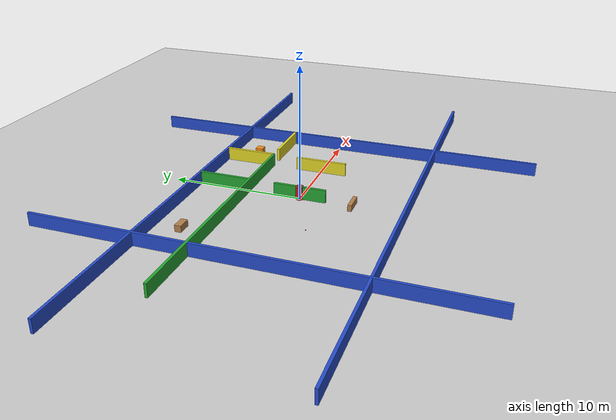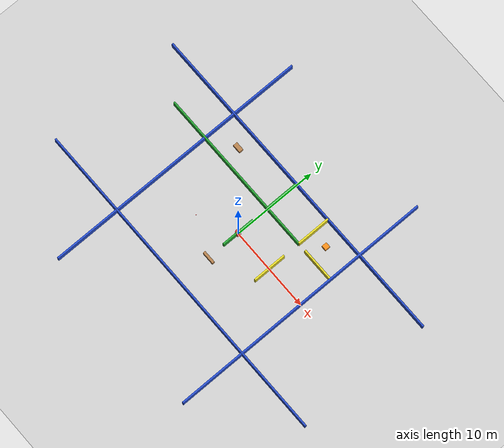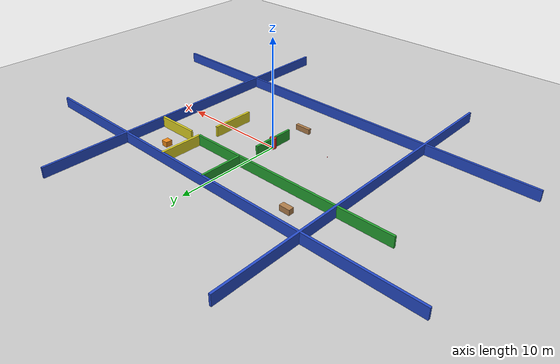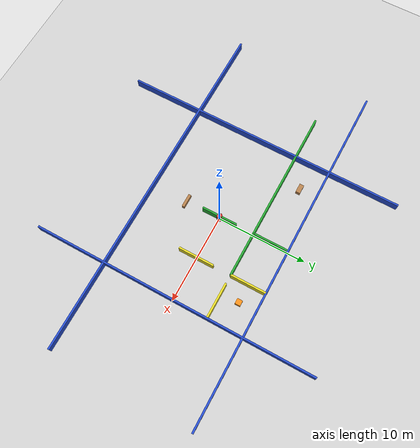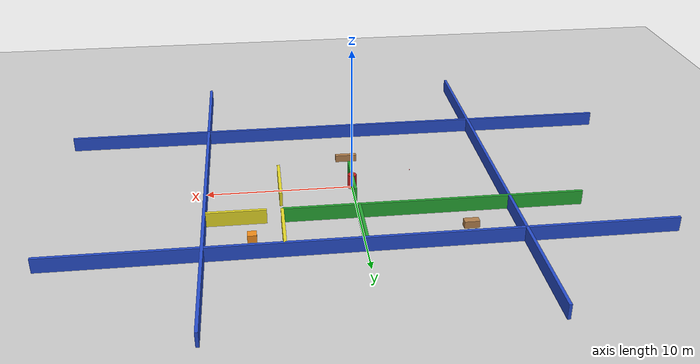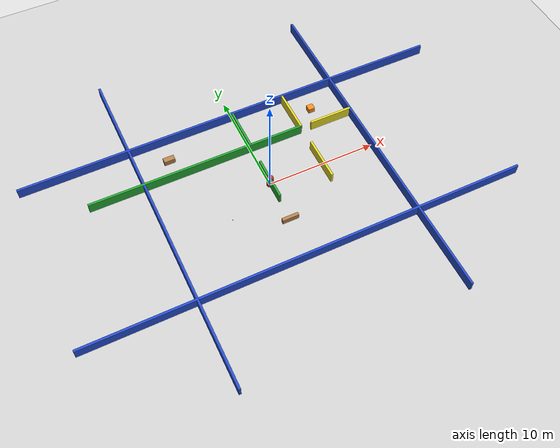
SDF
<?xml version='1.0'?>
<sdf version='1.7'>
  <world name='indoor_map'>
      <physics name="1ms" type="ignored">
      <max_step_size>0.001</max_step_size>
      <real_time_factor>1.0</real_time_factor>
    </physics>
     <plugin
      filename="gz-sim-physics-system"
      name="gz::sim::systems::Physics">
    </plugin>
    <plugin
      filename="gz-sim-user-commands-system"
      name="gz::sim::systems::UserCommands">
    </plugin>
    <plugin
      filename="gz-sim-scene-broadcaster-system"
      name="gz::sim::systems::SceneBroadcaster">
    </plugin>
    <plugin filename="gz-sim-imu-system"
      name="gz::sim::systems::Imu">
    </plugin>
    <plugin
      filename="gz-sim-sensors-system"
      name="gz::sim::systems::Sensors">
      <render_engine>ogre2</render_engine>
    </plugin>
    <!-- 环境光照 -->
    <light name='sun' type='directional'>
      <cast_shadows>1</cast_shadows>
      <pose>0 0 10 0 -0 0</pose>
      <diffuse>0.8 0.8 0.8 1</diffuse>
      <specular>0.2 0.2 0.2 1</specular>
      <attenuation>
        <range>1000</range>
        <constant>0.9</constant>
        <linear>0.01</linear>
        <quadratic>0.001</quadratic>
      </attenuation>
      <direction>-0.5 0.1 -0.9</direction>
    </light>

    <!-- 地面 -->
    <model name='ground_plane'>
      <static>1</static>
      <link name='link'>
        <collision name='collision'>
          <geometry>
            <plane>
              <normal>0 0 1</normal>
              <size>40 40</size>
            </plane>
          </geometry>
          <surface>
            <friction>
              <ode>
                <mu>100</mu>
                <mu2>50</mu2>
              </ode>
            </friction>
          </surface>
        </collision>
        <visual name='visual'>
          <geometry>
            <plane>
              <normal>0 0 1</normal>
              <size>40 40</size>
            </plane>
          </geometry>
          <material>
            <script>
              <uri>file://media/materials/scripts/gazebo.material</uri>
              <name>Gazebo/Grey</name>
            </script>
          </material>
        </visual>
      </link>
    </model>

    <!-- ===== 墙壁定义 ===== -->

    <!-- 主走廊外墙壁 -->
    <!-- 北墙 -->
    <model name='wall_north'>
      <static>1</static>
      <pose>0 8 0.5 0 0 0</pose>
      <link name='link'>
        <collision name='collision'>
          <geometry>
            <box>
              <size>40 0.2 1</size>
            </box>
          </geometry>
        </collision>
        <visual name='visual'>
          <geometry>
            <box>
              <size>40 0.2 1</size>
            </box>
          </geometry>
          <material>
            <script>
              <name>Gazebo/Blue</name>
              <uri>file://media/materials/scripts/gazebo.material</uri>
            </script>
          </material>
        </visual>
      </link>
    </model>

    <!-- 南墙 -->
    <model name='wall_south'>
      <static>1</static>
      <pose>0 -8 0.5 0 0 0</pose>
      <link name='link'>
        <collision name='collision'>
          <geometry>
            <box>
              <size>40 0.2 1</size>
            </box>
          </geometry>
        </collision>
        <visual name='visual'>
          <geometry>
            <box>
              <size>40 0.2 1</size>
            </box>
          </geometry>
          <material>
            <script>
              <name>Gazebo/Blue</name>
              <uri>file://media/materials/scripts/gazebo.material</uri>
            </script>
          </material>
        </visual>
      </link>
    </model>

    <!-- 西墙 -->
    <model name='wall_west'>
      <static>1</static>
      <pose>-10 0 0.5 0 0 0</pose>
      <link name='link'>
        <collision name='collision'>
          <geometry>
            <box>
              <size>0.2 32 1</size>
            </box>
          </geometry>
        </collision>
        <visual name='visual'>
          <geometry>
            <box>
              <size>0.2 32 1</size>
            </box>
          </geometry>
          <material>
            <script>
              <name>Gazebo/Blue</name>
              <uri>file://media/materials/scripts/gazebo.material</uri>
            </script>
          </material>
        </visual>
      </link>
    </model>

    <!-- 东墙（中间有开口作为走廊连接） -->
    <model name='wall_east'>
      <static>1</static>
      <pose>10 0 0.5 0 0 0</pose>
      <link name='link'>
        <collision name='collision'>
          <geometry>
            <box>
              <size>0.2 32 1</size>
            </box>
          </geometry>
        </collision>
        <visual name='visual'>
          <geometry>
            <box>
              <size>0.2 32 1</size>
            </box>
          </geometry>
          <material>
            <script>
              <name>Gazebo/Blue</name>
              <uri>file://media/materials/scripts/gazebo.material</uri>
            </script>
          </material>
        </visual>
      </link>
    </model>

    <!-- ===== 房间墙壁 ===== -->

    <!-- 房间1（左上角房间） -->
    <!-- 房间1南墙 -->
    <model name='room1_south_wall'>
      <static>1</static>
      <pose>-5 4 0.5 0 0 0</pose>
      <link name='link'>
        <collision name='collision'>
          <geometry>
            <box>
              <size>20 0.2 1</size>
            </box>
          </geometry>
        </collision>
        <visual name='visual'>
          <geometry>
            <box>
              <size>20 0.2 1</size>
            </box>
          </geometry>
          <material>
            <script>
              <name>Gazebo/Green</name>
              <uri>file://media/materials/scripts/gazebo.material</uri>
            </script>
          </material>
        </visual>
      </link>
    </model>

    <!-- 房间1东墙（有门洞） -->
    <model name='room1_east_wall_left'>
      <static>1</static>
      <pose>0 6 0.5 0 0 0</pose>
      <link name='link'>
        <collision name='collision'>
          <geometry>
            <box>
              <size>0.2 4 1</size>
            </box>
          </geometry>
        </collision>
        <visual name='visual'>
          <geometry>
            <box>
              <size>0.2 4 1</size>
            </box>
          </geometry>
          <material>
            <script>
              <name>Gazebo/Green</name>
              <uri>file://media/materials/scripts/gazebo.material</uri>
            </script>
          </material>
        </visual>
      </link>
    </model>

    <model name='room1_east_wall_right'>
      <static>1</static>
      <pose>0 0 0.5 0 0 0</pose>
      <link name='link'>
        <collision name='collision'>
          <geometry>
            <box>
              <size>0.2 4 1</size>
            </box>
          </geometry>
        </collision>
        <visual name='visual'>
          <geometry>
            <box>
              <size>0.2 4 1</size>
            </box>
          </geometry>
          <material>
            <script>
              <name>Gazebo/Green</name>
              <uri>file://media/materials/scripts/gazebo.material</uri>
            </script>
          </material>
        </visual>
      </link>
    </model>

    <!-- 房间2（右上角房间） -->
    <!-- 房间2西墙（有门洞） -->
    <model name='room2_west_wall_top'>
      <static>1</static>
      <pose>5 6 0.5 0 0 0</pose>
      <link name='link'>
        <collision name='collision'>
          <geometry>
            <box>
              <size>0.2 4 1</size>
            </box>
          </geometry>
        </collision>
        <visual name='visual'>
          <geometry>
            <box>
              <size>0.2 4 1</size>
            </box>
          </geometry>
          <material>
            <script>
              <name>Gazebo/Yellow</name>
              <uri>file://media/materials/scripts/gazebo.material</uri>
            </script>
          </material>
        </visual>
      </link>
    </model>

    <model name='room2_west_wall_bottom'>
      <static>1</static>
      <pose>5 0 0.5 0 0 0</pose>
      <link name='link'>
        <collision name='collision'>
          <geometry>
            <box>
              <size>0.2 4 1</size>
            </box>
          </geometry>
        </collision>
        <visual name='visual'>
          <geometry>
            <box>
              <size>0.2 4 1</size>
            </box>
          </geometry>
          <material>
            <script>
              <name>Gazebo/Yellow</name>
              <uri>file://media/materials/scripts/gazebo.material</uri>
            </script>
          </material>
        </visual>
      </link>
    </model>

    <!-- 房间2南墙 -->
    <model name='room2_south_wall'>
      <static>1</static>
      <pose>8 4 0.5 0 0 0</pose>
      <link name='link'>
        <collision name='collision'>
          <geometry>
            <box>
              <size>4 0.2 1</size>
            </box>
          </geometry>
        </collision>
        <visual name='visual'>
          <geometry>
            <box>
              <size>4 0.2 1</size>
            </box>
          </geometry>
          <material>
            <script>
              <name>Gazebo/Yellow</name>
              <uri>file://media/materials/scripts/gazebo.material</uri>
            </script>
          </material>
        </visual>
      </link>
    </model>

    <!-- ===== 障碍物 ===== -->

    <!-- 主走廊中的圆柱形障碍物 -->
    <model name='cylinder_obstacle'>
      <static>1</static>
      <pose>0 0 0.5 0 0 0</pose>
      <link name='link'>
        <collision name='collision'>
          <geometry>
            <cylinder>
              <radius>0.3</radius>
              <length>1</length>
            </cylinder>
          </geometry>
        </collision>
        <visual name='visual'>
          <geometry>
            <cylinder>
              <radius>0.3</radius>
              <length>1</length>
            </cylinder>
          </geometry>
          <material>
            <script>
              <name>Gazebo/Red</name>
              <uri>file://media/materials/scripts/gazebo.material</uri>
            </script>
          </material>
        </visual>
      </link>
    </model>

    <!-- 房间1中的桌子 -->
    <model name='table_room1'>
      <static>1</static>
      <pose>-7 6 0.25 0 0 0</pose>
      <link name='link'>
        <collision name='collision'>
          <geometry>
            <box>
              <size>1 0.5 0.5</size>
            </box>
          </geometry>
        </collision>
        <visual name='visual'>
          <geometry>
            <box>
              <size>1 0.5 0.5</size>
            </box>
          </geometry>
          <material>
            <script>
              <name>Gazebo/Wood</name>
              <uri>file://media/materials/scripts/gazebo.material</uri>
            </script>
          </material>
        </visual>
      </link>
    </model>

    <!-- 房间2中的箱子堆 -->
    <model name='box_stack'>
      <static>1</static>
      <pose>7 6 0.25 0 0 0</pose>
      <link name='link'>
        <collision name='collision'>
          <geometry>
            <box>
              <size>0.6 0.6 0.5</size>
            </box>
          </geometry>
        </collision>
        <visual name='visual'>
          <geometry>
            <box>
              <size>0.6 0.6 0.5</size>
            </box>
          </geometry>
          <material>
            <script>
              <name>Gazebo/Orange</name>
              <uri>file://media/materials/scripts/gazebo.material</uri>
            </script>
          </material>
        </visual>
      </link>
    </model>

    <!-- 走廊中的长凳 -->
    <model name='bench'>
      <static>1</static>
      <pose>0 -4 0.25 0 0 0</pose>
      <link name='link'>
        <collision name='collision'>
          <geometry>
            <box>
              <size>1.5 0.3 0.5</size>
            </box>
          </geometry>
        </collision>
        <visual name='visual'>
          <geometry>
            <box>
              <size>1.5 0.3 0.5</size>
            </box>
          </geometry>
          <material>
            <script>
              <name>Gazebo/Wood</name>
              <uri>file://media/materials/scripts/gazebo.material</uri>
            </script>
          </material>
        </visual>
      </link>
    </model>

    <!-- 物理和场景设置 -->
    <gravity>0 0 -9.8</gravity>
    <physics type='ode'>
      <max_step_size>0.01</max_step_size>
      <real_time_factor>1</real_time_factor>
      <real_time_update_rate>1000</real_time_update_rate>
      <solver>
        <type>quick</type>
        <iters>10</iters>
        <sor>1.3</sor>
      </solver>
    </physics>

    <scene>
      <ambient>0.4 0.4 0.4 1</ambient>
      <background>0.7 0.7 0.7 1</background>
      <shadows>1</shadows>
    </scene>

    <!-- GUI相机视角 -->
    <gui fullscreen='0'>
      <camera name='overview_camera'>
        <pose>0 0 15 0 1.57 0</pose>
        <view_controller>orbit</view_controller>
      </camera>
    </gui>

      <model name='box_r'>
        <pose>-4.4 -2.0 0.025 0 0 0</pose>
        <static>false</static>
        <allow_auto_disable>true</allow_auto_disable>
        <self_collide>false</self_collide>

        <link name='link'>
          <inertial>
            <mass>0.0875</mass>
            <inertia>
              <ixx>3.646e-05</ixx>
              <ixy>0</ixy>
              <ixz>0</ixz>
              <iyy>3.646e-05</iyy>
              <iyz>0</iyz>
              <izz>3.646e-05</izz>
            </inertia>
            <pose>0 0 0 0 0 0</pose>
          </inertial>

          <visual name='visual'>
            <pose>0 0 0 0 0 0</pose>
            <geometry>
              <box>
                <size>0.05 0.05 0.05</size>
              </box>
            </geometry>
            <material>
              <script>
                <name>Gazebo/Grey</name>
                <uri>file://media/materials/scripts/gazebo.material</uri>
              </script>
              <ambient>1 0 0 1</ambient>
              <diffuse>1 0 0 1</diffuse>
              <specular>1 0 0 1</specular>
              <emissive>1 0 0 1</emissive>
            </material>
            <cast_shadows>true</cast_shadows>
          </visual>

          <collision name='collision'>
            <pose>0 0 0 0 0 0</pose>
            <geometry>
              <box>
                <size>0.05 0.05 0.05</size>
              </box>
            </geometry>
            <surface>
              <friction>
                <ode>
                  <mu>10</mu>
                  <mu2>10</mu2>
                </ode>
              </friction>
            </surface>
          </collision>
        </link>

        <static>false</static>
        <pose>0 0.5 0.025 0 0 0</pose>
        <self_collide>false</self_collide>
      </model>

  </world>
</sdf>
